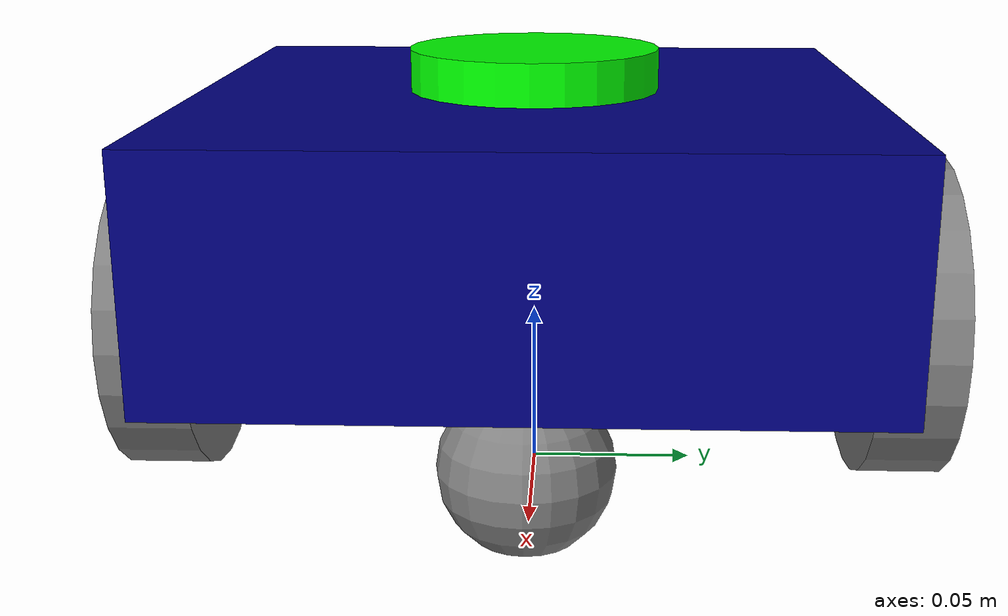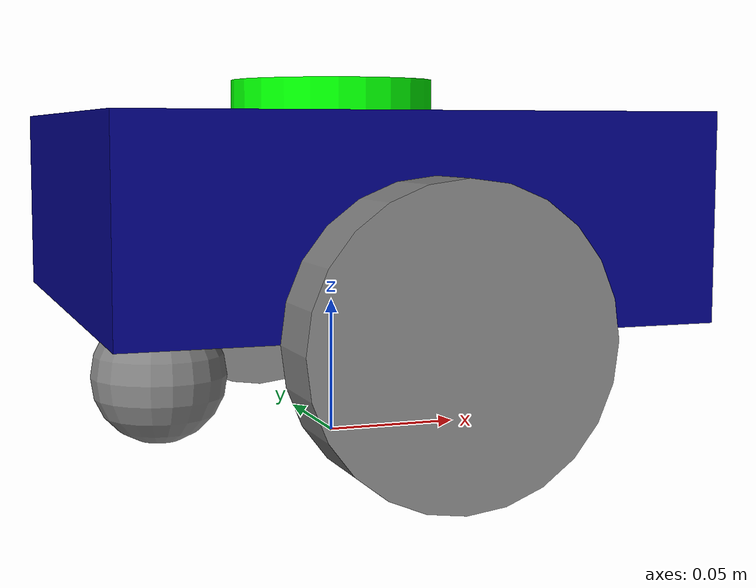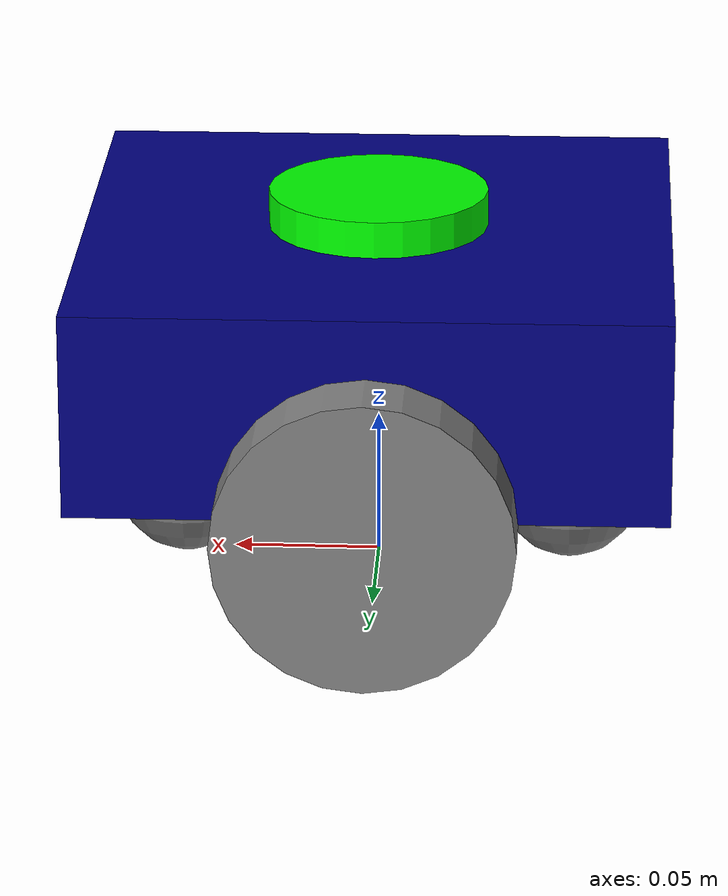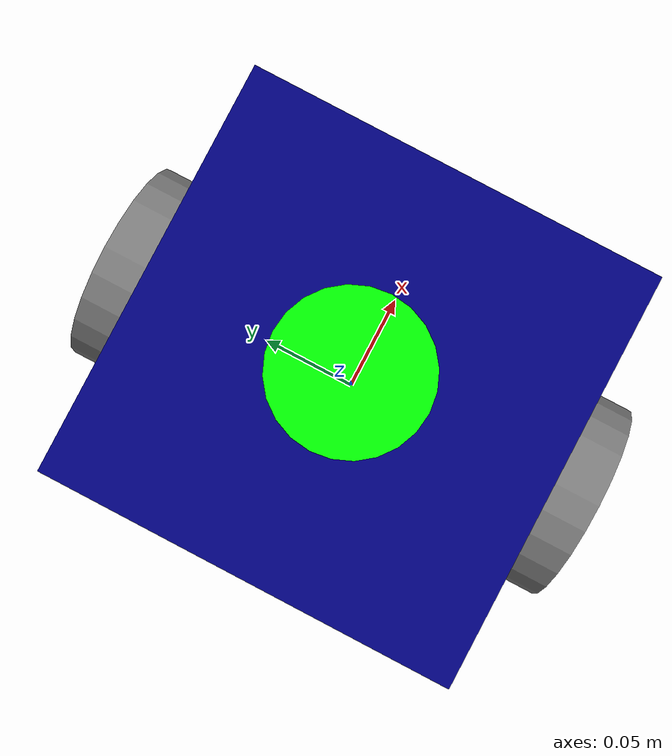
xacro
<?xml version="1.0"?>
<robot name="slambot" xmlns:xacro="http://www.ros.org/wiki/xacro">

    <!-- plik łączący wszystkie inne  -->

    <xacro:include filename="properties.xacro" />
    <xacro:include filename="mobile_base.xacro" />
    <xacro:include filename="control_slambot.xacro" />
    <xacro:include filename="gazebo_slambot.xacro" />
    <xacro:include filename="gazebo_lidar_setup.xacro" />
    <xacro:include filename="gazebo_imu_setup.xacro" />

</robot>

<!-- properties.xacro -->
<robot name="slambot" xmlns:xacro="http://www.ros.org/wiki/xacro">

    <material name="blue">
        <color rgba="0 0 0.5 1" />
    </material>

    <material name="grey">
        <color rgba="0.5 0.5 0.5 1" />
    </material>

    <material name="black">
        <color rgba="0 0 1 1" />
    </material>

    <material name="green">
        <color rgba="0 1 0 1" />
    </material>

    <xacro:macro name="box_inertia" params="m l w h xyz rpy">
        <inertial>
            <origin xyz="${xyz}" rpy="${rpy}" />
            <mass value="${m}" />
            <inertia ixx="${(m/12) * (h*h + l*l)}" ixy="0" ixz="0"
                     iyy="${(m/12) * (w*w + l*l)}" iyz="0"
                     izz="${(m/12) * (w*w + h*h)}" />
        </inertial>
    </xacro:macro>

    <xacro:macro name="cylinder_inertia" params="m r h xyz rpy">
        <inertial>
            <origin xyz="${xyz}" rpy="${rpy}" />
            <mass value="${m}" />
            <inertia ixx="${(m/12) * (3*r*r + h*h)}" ixy="0" ixz="0"
                     iyy="${(m/12) * (3*r*r + h*h)}" iyz="0"
                     izz="${(m/2) * (r*r)}" />
        </inertial>
    </xacro:macro>

    <xacro:macro name="sphere_inertia" params="m r xyz rpy">
        <inertial>
            <origin xyz="${xyz}" rpy="${rpy}" />
            <mass value="${m}" />
            <inertia ixx="${(2/5) * m * r * r}" ixy="0" ixz="0"
                     iyy="${(2/5) * m * r * r}" iyz="0"
                     izz="${(2/5) * m * r * r}" />
        </inertial>
    </xacro:macro>

</robot>

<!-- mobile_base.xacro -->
<robot name="slambot" xmlns:xacro="http://www.ros.org/wiki/xacro">

    <xacro:property name="base_length" value="0.2" />
    <xacro:property name="base_width" value="0.2" />
    <xacro:property name="base_height" value="0.07" />
    <xacro:property name="wheel_radius" value="0.05" />
    <xacro:property name="wheel_length" value="0.025" />
    <xacro:property name="max_limit" value="10000000000.0" />       <!-- joystick jest skutecznym ograniczeniem -->

    <!--                               LINK                                     -->

    <link name="base_footprint" />

    <link name="base_link">
        <visual>
            <geometry>
                <box size="${base_length} ${base_width} ${base_height}" />
            </geometry>
            <origin xyz="0 0 ${base_height / 2.0}" rpy="0 0 0" />
            <material name="blue" />
        </visual>
        <collision>
            <geometry>
                <box size="${base_length} ${base_width} ${base_height}" />
            </geometry>
            <origin xyz="0 0 ${base_height / 2.0}" rpy="0 0 0" />
        </collision>
        <xacro:box_inertia m="5.0" l="${2*base_length}" w="${2*base_width}" h="${2*base_height}"
                            xyz="0 0 ${base_height / 2.0}" rpy="0 0 0" />
    </link>

    <xacro:macro name="wheel_link" params="prefix">
        <link name="${prefix}_wheel_link">
            <visual>
                <geometry>
                    <cylinder radius="${wheel_radius}" length="${wheel_length}" />
                </geometry>
                <origin xyz="0 0 0" rpy="${pi / 2.0} 0 0" />
                <material name="grey" />
            </visual>
            <collision>
                <geometry>
                    <cylinder radius="${wheel_radius}" length="${wheel_length}" />
                </geometry>
                <origin xyz="0 0 0" rpy="${pi / 2.0} 0 0" />
            </collision>
            <xacro:cylinder_inertia m="1.0" r="${2*wheel_radius}" h="${2*wheel_length}"
                                    xyz="0 0 0" rpy="${pi / 2.0} 0 0" />
        </link>
    </xacro:macro>

    <xacro:wheel_link prefix="right" />
    <xacro:wheel_link prefix="left" />

    <link name="front_caster_wheel_link">
        <visual>
            <geometry>
                <sphere radius="${wheel_radius / 2.0}" />
            </geometry>
            <origin xyz="0 0 0" rpy="0 0 0" />
            <material name="grey" />
        </visual>
        <collision>
            <geometry>
                <sphere radius="${wheel_radius / 2.0}" />
            </geometry>
            <origin xyz="0 0 0" rpy="0 0 0" />
        </collision>
        <xacro:sphere_inertia m="0.5" r="${2*wheel_radius / 2.0}"
                              xyz="0 0 0" rpy="0 0 0" />
    </link>

    <link name="rear_caster_wheel_link">
        <visual>
            <geometry>
                <sphere radius="${wheel_radius / 2.0}" />
            </geometry>
            <origin xyz="0 0 0" rpy="0 0 0" />
            <material name="grey" />
        </visual>
        <collision>
            <geometry>
                <sphere radius="${wheel_radius / 2.0}" />
            </geometry>
            <origin xyz="0 0 0" rpy="0 0 0" />
        </collision>
        <xacro:sphere_inertia m="0.5" r="${2*wheel_radius / 2.0}"
                              xyz="0 0 0" rpy="0 0 0" />
    </link>

    <link name="laser_link">
            <visual>
                <geometry>
                    <cylinder radius="${0.75*wheel_radius}" length="${wheel_length}" />
                </geometry>
                <origin xyz="0 0 0" rpy="0 0 0" />
                <material name="green" />
            </visual>
            <xacro:cylinder_inertia m="1.0" r="${2*wheel_radius}" h="${2*wheel_length}"
                                    xyz="0 0 ${0.5*wheel_length}" rpy="0 0 0" />
    </link>

    <!--                                JOINT                                      -->

    <joint name="base_joint" type="fixed">
        <parent link="base_footprint" />
        <child link="base_link" />
        <origin xyz="0 0 ${wheel_radius}" rpy="0 0 0"/>
    </joint>

    <joint name="right_wheel_joint" type="continuous">
        <parent link="base_link" />
        <child link="right_wheel_link" />
        <origin xyz="0 ${-(base_width + wheel_length) / 2.0} 0" rpy="0 0 0" />
        <limit effort="${max_limit}" velocity="${max_limit}" />
        <axis xyz="0 1 0" />
    </joint>

    <joint name="left_wheel_joint" type="continuous">
        <parent link="base_link" />
        <child link="left_wheel_link" />
        <origin xyz="0 ${(base_width + wheel_length) / 2.0} 0" rpy="0 0 0" />
        <limit  effort="${max_limit}" velocity="${max_limit}" />
        <axis xyz="0 1 0" />
    </joint>

    <joint name="base_front_caster_wheel_joint" type="fixed">
        <parent link="base_link" />
        <child link="front_caster_wheel_link" />
        <origin xyz="${base_length / 3.0} 0 ${-wheel_radius / 2.0}" rpy="0 0 0" />
    </joint>

    <joint name="base_back_caster_wheel_joint" type="fixed">
        <parent link="base_link" />
        <child link="rear_caster_wheel_link" />
        <origin xyz="${-base_length / 3.0} 0 ${-wheel_radius / 2.0}" rpy="0 0 0" />
    </joint>

    <joint name="laser_joint" type="fixed">
        <parent link="base_link" />
        <child link="laser_link" />
        <origin xyz="0 0 ${base_height}" rpy="0 0 0" />
    </joint>

</robot>

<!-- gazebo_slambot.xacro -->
<robot name="slambot" xmlns:xacro="http://www.ros.org/wiki/xacro">

            <!-- fizyka kontaktu-->

<xacro:property name="friction_high" value="1000.0" />
<xacro:property name="friction_low"  value="0.0001" />
<xacro:property name="kp"           value="10000.0" />
<xacro:property name="kd"           value="10.0" />
<xacro:property name="minDepth"     value="0.001" />
<xacro:property name="maxVel"       value="0.1" />

<xacro:macro name="wheel_gazebo_params" params="link friction use_fdir:=false">
  <gazebo reference="${link}">
    <mu1>${friction}</mu1>
    <mu2>${friction}</mu2>
    <kp>${kp}</kp>
    <kd>${kd}</kd>
    <minDepth>${minDepth}</minDepth>
    <maxVel>${maxVel}</maxVel>
    <xacro:if value="${use_fdir}">
      <fdir1>1 0 0</fdir1>
    </xacro:if>
  </gazebo>
</xacro:macro>

<xacro:wheel_gazebo_params link="right_wheel_link"  friction="${friction_high}" use_fdir="true"/>
<xacro:wheel_gazebo_params link="left_wheel_link"   friction="${friction_high}" use_fdir="true"/>
<xacro:wheel_gazebo_params link="front_caster_wheel_link" friction="${friction_low}"/>
<xacro:wheel_gazebo_params link="rear_caster_wheel_link"  friction="${friction_low}"/>

<!--            włączenie komunikacji ros2_control i gazebo        -->
<gazebo>
  <plugin filename="gz_ros2_control-system" name="gz_ros2_control::GazeboSimROS2ControlPlugin">
      <robot_param>robot_description</robot_param>
      <robot_param_node>robot_state_publisher</robot_param_node>
      <parameters>$(find description_slambot)/config/controllers_slambot.yaml</parameters>
  </plugin>

  <plugin filename="libignition-gazebo-imu-system.so" name="ignition::gazebo::systems::Imu">
    <initial_orientation_as_reference>false</initial_orientation_as_reference>
  </plugin>

  <plugin filename="ignition-gazebo-sensors-system" name="ignition::gazebo::systems::Sensors">
    <render_engine>ogre2</render_engine>
  </plugin>

</gazebo>

</robot>
